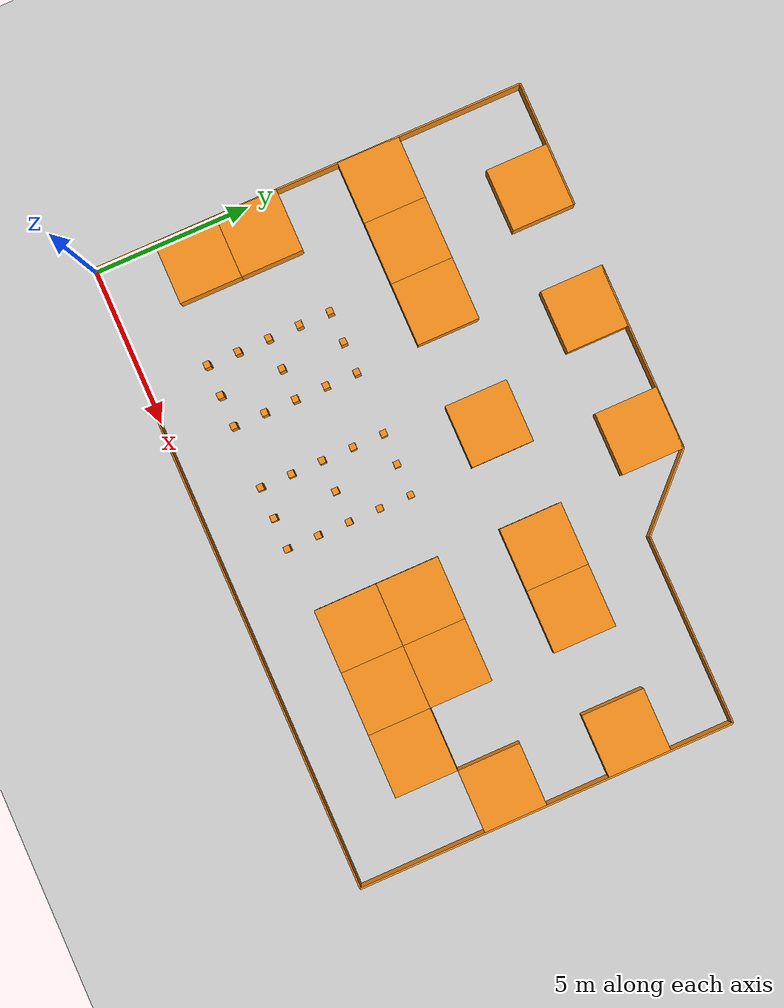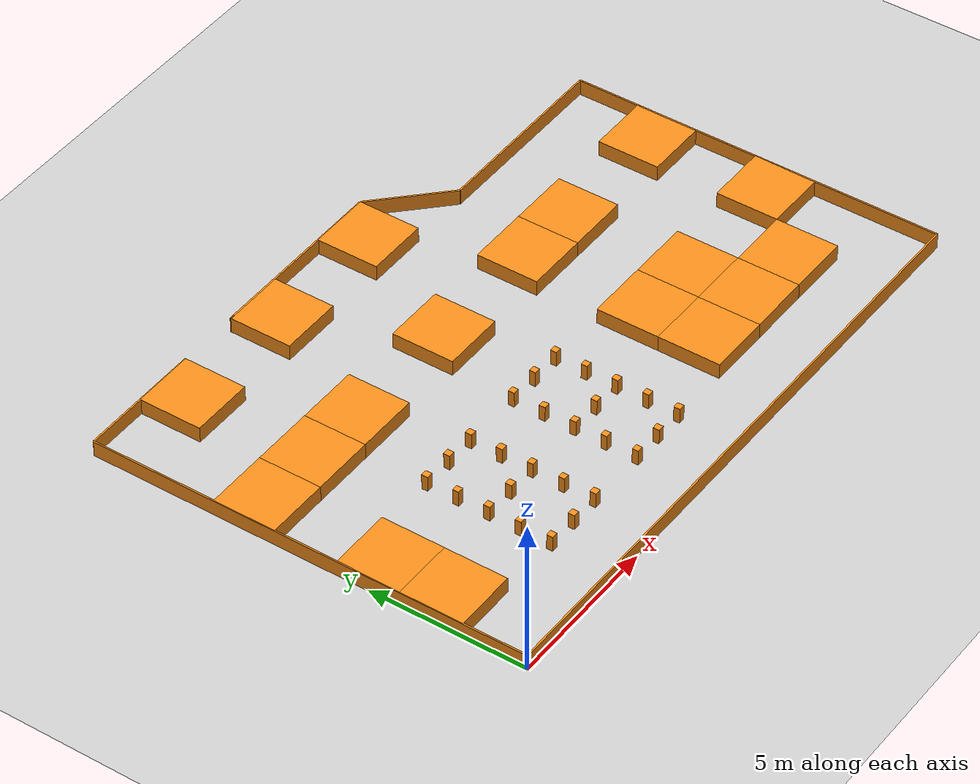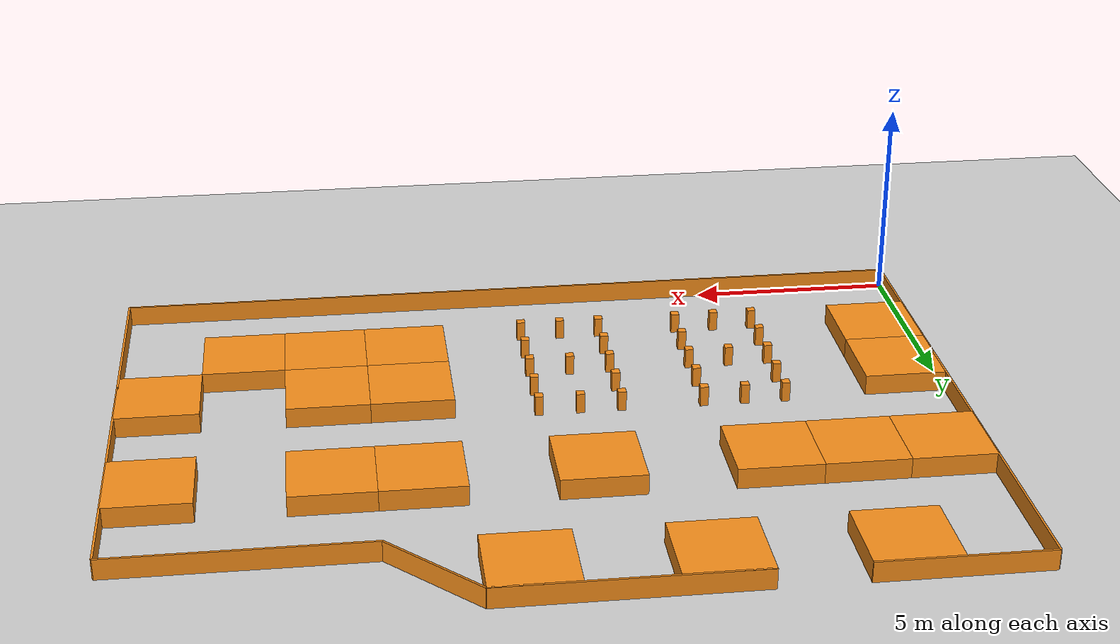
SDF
<sdf version="1.6">
 <world name="default">
  <model name="box_57">
   <pose>1.0 3.0 0.25 0 0 0</pose>
   <link name="link">
    <inertial>
     <mass>1</mass>
     <inertia><ixx>0</ixx><ixy>0</ixy><ixz>0</ixz><iyy>0</iyy><iyz>0</iyz><izz>0</izz></inertia>
    </inertial>
    <collision name="collision"><geometry><box><size>2.0 2.0 0.5</size></box></geometry></collision>
    <visual name="visual">
     <geometry><box><size>2.0 2.0 0.5</size></box></geometry>
     <material>
      <script><name>Gazebo/Orange</name><uri>file://media/materials/scripts/gazebo.material</uri></script>
     </material>
    </visual>
   </link>
   <static>1</static>
  </model>
  <model name="box_56">
   <pose>1.0 5.0 0.25 0 0 0</pose>
   <link name="link">
    <inertial>
     <mass>1</mass>
     <inertia><ixx>0</ixx><ixy>0</ixy><ixz>0</ixz><iyy>0</iyy><iyz>0</iyz><izz>0</izz></inertia>
    </inertial>
    <collision name="collision"><geometry><box><size>2.0 2.0 0.5</size></box></geometry></collision>
    <visual name="visual">
     <geometry><box><size>2.0 2.0 0.5</size></box></geometry>
     <material>
      <script><name>Gazebo/Orange</name><uri>file://media/materials/scripts/gazebo.material</uri></script>
     </material>
    </visual>
   </link>
   <static>1</static>
  </model>
  <model name="box_55">
   <pose>15.0 5.0 0.25 0 0 0</pose>
   <link name="link">
    <inertial>
     <mass>1</mass>
     <inertia><ixx>0</ixx><ixy>0</ixy><ixz>0</ixz><iyy>0</iyy><iyz>0</iyz><izz>0</izz></inertia>
    </inertial>
    <collision name="collision"><geometry><box><size>2.0 2.0 0.5</size></box></geometry></collision>
    <visual name="visual">
     <geometry><box><size>2.0 2.0 0.5</size></box></geometry>
     <material>
      <script><name>Gazebo/Orange</name><uri>file://media/materials/scripts/gazebo.material</uri></script>
     </material>
    </visual>
   </link>
   <static>1</static>
  </model>
  <model name="box_54">
   <pose>15.0 3.0 0.25 0 0 0</pose>
   <link name="link">
    <inertial>
     <mass>1</mass>
     <inertia><ixx>0</ixx><ixy>0</ixy><ixz>0</ixz><iyy>0</iyy><iyz>0</iyz><izz>0</izz></inertia>
    </inertial>
    <collision name="collision"><geometry><box><size>2.0 2.0 0.5</size></box></geometry></collision>
    <visual name="visual">
     <geometry><box><size>2.0 2.0 0.5</size></box></geometry>
     <material>
      <script><name>Gazebo/Orange</name><uri>file://media/materials/scripts/gazebo.material</uri></script>
     </material>
    </visual>
   </link>
   <static>1</static>
  </model>
  <model name="box_53">
   <pose>13.0 3.0 0.25 0 0 0</pose>
   <link name="link">
    <inertial>
     <mass>1</mass>
     <inertia><ixx>0</ixx><ixy>0</ixy><ixz>0</ixz><iyy>0</iyy><iyz>0</iyz><izz>0</izz></inertia>
    </inertial>
    <collision name="collision"><geometry><box><size>2.0 2.0 0.5</size></box></geometry></collision>
    <visual name="visual">
     <geometry><box><size>2.0 2.0 0.5</size></box></geometry>
     <material>
      <script><name>Gazebo/Orange</name><uri>file://media/materials/scripts/gazebo.material</uri></script>
     </material>
    </visual>
   </link>
   <static>1</static>
  </model>
  <model name="box_52">
   <pose>13.0 5.0 0.25 0 0 0</pose>
   <link name="link">
    <inertial>
     <mass>1</mass>
     <inertia><ixx>0</ixx><ixy>0</ixy><ixz>0</ixz><iyy>0</iyy><iyz>0</iyz><izz>0</izz></inertia>
    </inertial>
    <collision name="collision"><geometry><box><size>2.0 2.0 0.5</size></box></geometry></collision>
    <visual name="visual">
     <geometry><box><size>2.0 2.0 0.5</size></box></geometry>
     <material>
      <script><name>Gazebo/Orange</name><uri>file://media/materials/scripts/gazebo.material</uri></script>
     </material>
    </visual>
   </link>
   <static>1</static>
  </model>
  <model name="box_51">
   <pose>17.0 3.0 0.25 0 0 0</pose>
   <link name="link">
    <inertial>
     <mass>1</mass>
     <inertia><ixx>0</ixx><ixy>0</ixy><ixz>0</ixz><iyy>0</iyy><iyz>0</iyz><izz>0</izz></inertia>
    </inertial>
    <collision name="collision"><geometry><box><size>2.0 2.0 0.5</size></box></geometry></collision>
    <visual name="visual">
     <geometry><box><size>2.0 2.0 0.5</size></box></geometry>
     <material>
      <script><name>Gazebo/Orange</name><uri>file://media/materials/scripts/gazebo.material</uri></script>
     </material>
    </visual>
   </link>
   <static>1</static>
  </model>
  <model name="box_50">
   <pose>19.0 5.0 0.25 0 0 0</pose>
   <link name="link">
    <inertial>
     <mass>1</mass>
     <inertia><ixx>0</ixx><ixy>0</ixy><ixz>0</ixz><iyy>0</iyy><iyz>0</iyz><izz>0</izz></inertia>
    </inertial>
    <collision name="collision"><geometry><box><size>2.0 2.0 0.5</size></box></geometry></collision>
    <visual name="visual">
     <geometry><box><size>2.0 2.0 0.5</size></box></geometry>
     <material>
      <script><name>Gazebo/Orange</name><uri>file://media/materials/scripts/gazebo.material</uri></script>
     </material>
    </visual>
   </link>
   <static>1</static>
  </model>
  <model name="box_49">
   <pose>19.0 9.0 0.25 0 0 0</pose>
   <link name="link">
    <inertial>
     <mass>1</mass>
     <inertia><ixx>0</ixx><ixy>0</ixy><ixz>0</ixz><iyy>0</iyy><iyz>0</iyz><izz>0</izz></inertia>
    </inertial>
    <collision name="collision"><geometry><box><size>2.0 2.0 0.5</size></box></geometry></collision>
    <visual name="visual">
     <geometry><box><size>2.0 2.0 0.5</size></box></geometry>
     <material>
      <script><name>Gazebo/Orange</name><uri>file://media/materials/scripts/gazebo.material</uri></script>
     </material>
    </visual>
   </link>
   <static>1</static>
  </model>
  <model name="box_48">
   <pose>15.0 9.0 0.25 0 0 0</pose>
   <link name="link">
    <inertial>
     <mass>1</mass>
     <inertia><ixx>0</ixx><ixy>0</ixy><ixz>0</ixz><iyy>0</iyy><iyz>0</iyz><izz>0</izz></inertia>
    </inertial>
    <collision name="collision"><geometry><box><size>2.0 2.0 0.5</size></box></geometry></collision>
    <visual name="visual">
     <geometry><box><size>2.0 2.0 0.5</size></box></geometry>
     <material>
      <script><name>Gazebo/Orange</name><uri>file://media/materials/scripts/gazebo.material</uri></script>
     </material>
    </visual>
   </link>
   <static>1</static>
  </model>
  <model name="box_47">
   <pose>13.0 9.0 0.25 0 0 0</pose>
   <link name="link">
    <inertial>
     <mass>1</mass>
     <inertia><ixx>0</ixx><ixy>0</ixy><ixz>0</ixz><iyy>0</iyy><iyz>0</iyz><izz>0</izz></inertia>
    </inertial>
    <collision name="collision"><geometry><box><size>2.0 2.0 0.5</size></box></geometry></collision>
    <visual name="visual">
     <geometry><box><size>2.0 2.0 0.5</size></box></geometry>
     <material>
      <script><name>Gazebo/Orange</name><uri>file://media/materials/scripts/gazebo.material</uri></script>
     </material>
    </visual>
   </link>
   <static>1</static>
  </model>
  <model name="box_46">
   <pose>9.0 9.0 0.25 0 0 0</pose>
   <link name="link">
    <inertial>
     <mass>1</mass>
     <inertia><ixx>0</ixx><ixy>0</ixy><ixz>0</ixz><iyy>0</iyy><iyz>0</iyz><izz>0</izz></inertia>
    </inertial>
    <collision name="collision"><geometry><box><size>2.0 2.0 0.5</size></box></geometry></collision>
    <visual name="visual">
     <geometry><box><size>2.0 2.0 0.5</size></box></geometry>
     <material>
      <script><name>Gazebo/Orange</name><uri>file://media/materials/scripts/gazebo.material</uri></script>
     </material>
    </visual>
   </link>
   <static>1</static>
  </model>
  <model name="box_45">
   <pose>5.0 9.0 0.25 0 0 0</pose>
   <link name="link">
    <inertial>
     <mass>1</mass>
     <inertia><ixx>0</ixx><ixy>0</ixy><ixz>0</ixz><iyy>0</iyy><iyz>0</iyz><izz>0</izz></inertia>
    </inertial>
    <collision name="collision"><geometry><box><size>2.0 2.0 0.5</size></box></geometry></collision>
    <visual name="visual">
     <geometry><box><size>2.0 2.0 0.5</size></box></geometry>
     <material>
      <script><name>Gazebo/Orange</name><uri>file://media/materials/scripts/gazebo.material</uri></script>
     </material>
    </visual>
   </link>
   <static>1</static>
  </model>
  <model name="box_44">
   <pose>3.0 9.0 0.25 0 0 0</pose>
   <link name="link">
    <inertial>
     <mass>1</mass>
     <inertia><ixx>0</ixx><ixy>0</ixy><ixz>0</ixz><iyy>0</iyy><iyz>0</iyz><izz>0</izz></inertia>
    </inertial>
    <collision name="collision"><geometry><box><size>2.0 2.0 0.5</size></box></geometry></collision>
    <visual name="visual">
     <geometry><box><size>2.0 2.0 0.5</size></box></geometry>
     <material>
      <script><name>Gazebo/Orange</name><uri>file://media/materials/scripts/gazebo.material</uri></script>
     </material>
    </visual>
   </link>
   <static>1</static>
  </model>
  <model name="box_43">
   <pose>1.0 9.0 0.25 0 0 0</pose>
   <link name="link">
    <inertial>
     <mass>1</mass>
     <inertia><ixx>0</ixx><ixy>0</ixy><ixz>0</ixz><iyy>0</iyy><iyz>0</iyz><izz>0</izz></inertia>
    </inertial>
    <collision name="collision"><geometry><box><size>2.0 2.0 0.5</size></box></geometry></collision>
    <visual name="visual">
     <geometry><box><size>2.0 2.0 0.5</size></box></geometry>
     <material>
      <script><name>Gazebo/Orange</name><uri>file://media/materials/scripts/gazebo.material</uri></script>
     </material>
    </visual>
   </link>
   <static>1</static>
  </model>
  <model name="box_42">
   <pose>11.0 13.0 0.25 0 0 0</pose>
   <link name="link">
    <inertial>
     <mass>1</mass>
     <inertia><ixx>0</ixx><ixy>0</ixy><ixz>0</ixz><iyy>0</iyy><iyz>0</iyz><izz>0</izz></inertia>
    </inertial>
    <collision name="collision"><geometry><box><size>2.0 2.0 0.5</size></box></geometry></collision>
    <visual name="visual">
     <geometry><box><size>2.0 2.0 0.5</size></box></geometry>
     <material>
      <script><name>Gazebo/Orange</name><uri>file://media/materials/scripts/gazebo.material</uri></script>
     </material>
    </visual>
   </link>
   <static>1</static>
  </model>
  <model name="box_41">
   <pose>7.0 13.0 0.25 0 0 0</pose>
   <link name="link">
    <inertial>
     <mass>1</mass>
     <inertia><ixx>0</ixx><ixy>0</ixy><ixz>0</ixz><iyy>0</iyy><iyz>0</iyz><izz>0</izz></inertia>
    </inertial>
    <collision name="collision"><geometry><box><size>2.0 2.0 0.5</size></box></geometry></collision>
    <visual name="visual">
     <geometry><box><size>2.0 2.0 0.5</size></box></geometry>
     <material>
      <script><name>Gazebo/Orange</name><uri>file://media/materials/scripts/gazebo.material</uri></script>
     </material>
    </visual>
   </link>
   <static>1</static>
  </model>
  <model name="box_40">
   <pose>3.0 13.0 0.25 0 0 0</pose>
   <link name="link">
    <inertial>
     <mass>1</mass>
     <inertia><ixx>0</ixx><ixy>0</ixy><ixz>0</ixz><iyy>0</iyy><iyz>0</iyz><izz>0</izz></inertia>
    </inertial>
    <collision name="collision"><geometry><box><size>2.0 2.0 0.5</size></box></geometry></collision>
    <visual name="visual">
     <geometry><box><size>2.0 2.0 0.5</size></box></geometry>
     <material>
      <script><name>Gazebo/Orange</name><uri>file://media/materials/scripts/gazebo.material</uri></script>
     </material>
    </visual>
   </link>
   <static>1</static>
  </model>
  <model name="box_39">
   <pose>10.0 2.0 0.25 0 0 0</pose>
   <link name="link">
    <inertial>
     <mass>1</mass>
     <inertia><ixx>0</ixx><ixy>0</ixy><ixz>0</ixz><iyy>0</iyy><iyz>0</iyz><izz>0</izz></inertia>
    </inertial>
    <collision name="collision"><geometry><box><size>0.2 0.2 0.5</size></box></geometry></collision>
    <visual name="visual">
     <geometry><box><size>0.2 0.2 0.5</size></box></geometry>
     <material>
      <script><name>Gazebo/Orange</name><uri>file://media/materials/scripts/gazebo.material</uri></script>
     </material>
    </visual>
   </link>
   <static>1</static>
  </model>
  <model name="box_38">
   <pose>9.0 2.0 0.25 0 0 0</pose>
   <link name="link">
    <inertial>
     <mass>1</mass>
     <inertia><ixx>0</ixx><ixy>0</ixy><ixz>0</ixz><iyy>0</iyy><iyz>0</iyz><izz>0</izz></inertia>
    </inertial>
    <collision name="collision"><geometry><box><size>0.2 0.2 0.5</size></box></geometry></collision>
    <visual name="visual">
     <geometry><box><size>0.2 0.2 0.5</size></box></geometry>
     <material>
      <script><name>Gazebo/Orange</name><uri>file://media/materials/scripts/gazebo.material</uri></script>
     </material>
    </visual>
   </link>
   <static>1</static>
  </model>
  <model name="box_37">
   <pose>8.0 2.0 0.25 0 0 0</pose>
   <link name="link">
    <inertial>
     <mass>1</mass>
     <inertia><ixx>0</ixx><ixy>0</ixy><ixz>0</ixz><iyy>0</iyy><iyz>0</iyz><izz>0</izz></inertia>
    </inertial>
    <collision name="collision"><geometry><box><size>0.2 0.2 0.5</size></box></geometry></collision>
    <visual name="visual">
     <geometry><box><size>0.2 0.2 0.5</size></box></geometry>
     <material>
      <script><name>Gazebo/Orange</name><uri>file://media/materials/scripts/gazebo.material</uri></script>
     </material>
    </visual>
   </link>
   <static>1</static>
  </model>
  <model name="box_36">
   <pose>10.0 3.0 0.25 0 0 0</pose>
   <link name="link">
    <inertial>
     <mass>1</mass>
     <inertia><ixx>0</ixx><ixy>0</ixy><ixz>0</ixz><iyy>0</iyy><iyz>0</iyz><izz>0</izz></inertia>
    </inertial>
    <collision name="collision"><geometry><box><size>0.2 0.2 0.5</size></box></geometry></collision>
    <visual name="visual">
     <geometry><box><size>0.2 0.2 0.5</size></box></geometry>
     <material>
      <script><name>Gazebo/Orange</name><uri>file://media/materials/scripts/gazebo.material</uri></script>
     </material>
    </visual>
   </link>
   <static>1</static>
  </model>
  <model name="box_35">
   <pose>8.0 3.0 0.25 0 0 0</pose>
   <link name="link">
    <inertial>
     <mass>1</mass>
     <inertia><ixx>0</ixx><ixy>0</ixy><ixz>0</ixz><iyy>0</iyy><iyz>0</iyz><izz>0</izz></inertia>
    </inertial>
    <collision name="collision"><geometry><box><size>0.2 0.2 0.5</size></box></geometry></collision>
    <visual name="visual">
     <geometry><box><size>0.2 0.2 0.5</size></box></geometry>
     <material>
      <script><name>Gazebo/Orange</name><uri>file://media/materials/scripts/gazebo.material</uri></script>
     </material>
    </visual>
   </link>
   <static>1</static>
  </model>
  <model name="box_34">
   <pose>10.0 4.0 0.25 0 0 0</pose>
   <link name="link">
    <inertial>
     <mass>1</mass>
     <inertia><ixx>0</ixx><ixy>0</ixy><ixz>0</ixz><iyy>0</iyy><iyz>0</iyz><izz>0</izz></inertia>
    </inertial>
    <collision name="collision"><geometry><box><size>0.2 0.2 0.5</size></box></geometry></collision>
    <visual name="visual">
     <geometry><box><size>0.2 0.2 0.5</size></box></geometry>
     <material>
      <script><name>Gazebo/Orange</name><uri>file://media/materials/scripts/gazebo.material</uri></script>
     </material>
    </visual>
   </link>
   <static>1</static>
  </model>
  <model name="box_33">
   <pose>9.0 4.0 0.25 0 0 0</pose>
   <link name="link">
    <inertial>
     <mass>1</mass>
     <inertia><ixx>0</ixx><ixy>0</ixy><ixz>0</ixz><iyy>0</iyy><iyz>0</iyz><izz>0</izz></inertia>
    </inertial>
    <collision name="collision"><geometry><box><size>0.2 0.2 0.5</size></box></geometry></collision>
    <visual name="visual">
     <geometry><box><size>0.2 0.2 0.5</size></box></geometry>
     <material>
      <script><name>Gazebo/Orange</name><uri>file://media/materials/scripts/gazebo.material</uri></script>
     </material>
    </visual>
   </link>
   <static>1</static>
  </model>
  <model name="box_32">
   <pose>8.0 4.0 0.25 0 0 0</pose>
   <link name="link">
    <inertial>
     <mass>1</mass>
     <inertia><ixx>0</ixx><ixy>0</ixy><ixz>0</ixz><iyy>0</iyy><iyz>0</iyz><izz>0</izz></inertia>
    </inertial>
    <collision name="collision"><geometry><box><size>0.2 0.2 0.5</size></box></geometry></collision>
    <visual name="visual">
     <geometry><box><size>0.2 0.2 0.5</size></box></geometry>
     <material>
      <script><name>Gazebo/Orange</name><uri>file://media/materials/scripts/gazebo.material</uri></script>
     </material>
    </visual>
   </link>
   <static>1</static>
  </model>
  <model name="box_31">
   <pose>10.0 4.0 0.25 0 0 0</pose>
   <link name="link">
    <inertial>
     <mass>1</mass>
     <inertia><ixx>0</ixx><ixy>0</ixy><ixz>0</ixz><iyy>0</iyy><iyz>0</iyz><izz>0</izz></inertia>
    </inertial>
    <collision name="collision"><geometry><box><size>0.2 0.2 0.5</size></box></geometry></collision>
    <visual name="visual">
     <geometry><box><size>0.2 0.2 0.5</size></box></geometry>
     <material>
      <script><name>Gazebo/Orange</name><uri>file://media/materials/scripts/gazebo.material</uri></script>
     </material>
    </visual>
   </link>
   <static>1</static>
  </model>
  <model name="box_30">
   <pose>9.0 4.0 0.25 0 0 0</pose>
   <link name="link">
    <inertial>
     <mass>1</mass>
     <inertia><ixx>0</ixx><ixy>0</ixy><ixz>0</ixz><iyy>0</iyy><iyz>0</iyz><izz>0</izz></inertia>
    </inertial>
    <collision name="collision"><geometry><box><size>0.2 0.2 0.5</size></box></geometry></collision>
    <visual name="visual">
     <geometry><box><size>0.2 0.2 0.5</size></box></geometry>
     <material>
      <script><name>Gazebo/Orange</name><uri>file://media/materials/scripts/gazebo.material</uri></script>
     </material>
    </visual>
   </link>
   <static>1</static>
  </model>
  <model name="box_29">
   <pose>8.0 4.0 0.25 0 0 0</pose>
   <link name="link">
    <inertial>
     <mass>1</mass>
     <inertia><ixx>0</ixx><ixy>0</ixy><ixz>0</ixz><iyy>0</iyy><iyz>0</iyz><izz>0</izz></inertia>
    </inertial>
    <collision name="collision"><geometry><box><size>0.2 0.2 0.5</size></box></geometry></collision>
    <visual name="visual">
     <geometry><box><size>0.2 0.2 0.5</size></box></geometry>
     <material>
      <script><name>Gazebo/Orange</name><uri>file://media/materials/scripts/gazebo.material</uri></script>
     </material>
    </visual>
   </link>
   <static>1</static>
  </model>
  <model name="box_28">
   <pose>10.0 5.0 0.25 0 0 0</pose>
   <link name="link">
    <inertial>
     <mass>1</mass>
     <inertia><ixx>0</ixx><ixy>0</ixy><ixz>0</ixz><iyy>0</iyy><iyz>0</iyz><izz>0</izz></inertia>
    </inertial>
    <collision name="collision"><geometry><box><size>0.2 0.2 0.5</size></box></geometry></collision>
    <visual name="visual">
     <geometry><box><size>0.2 0.2 0.5</size></box></geometry>
     <material>
      <script><name>Gazebo/Orange</name><uri>file://media/materials/scripts/gazebo.material</uri></script>
     </material>
    </visual>
   </link>
   <static>1</static>
  </model>
  <model name="box_27">
   <pose>8.0 5.0 0.25 0 0 0</pose>
   <link name="link">
    <inertial>
     <mass>1</mass>
     <inertia><ixx>0</ixx><ixy>0</ixy><ixz>0</ixz><iyy>0</iyy><iyz>0</iyz><izz>0</izz></inertia>
    </inertial>
    <collision name="collision"><geometry><box><size>0.2 0.2 0.5</size></box></geometry></collision>
    <visual name="visual">
     <geometry><box><size>0.2 0.2 0.5</size></box></geometry>
     <material>
      <script><name>Gazebo/Orange</name><uri>file://media/materials/scripts/gazebo.material</uri></script>
     </material>
    </visual>
   </link>
   <static>1</static>
  </model>
  <model name="box_26">
   <pose>10.0 6.0 0.25 0 0 0</pose>
   <link name="link">
    <inertial>
     <mass>1</mass>
     <inertia><ixx>0</ixx><ixy>0</ixy><ixz>0</ixz><iyy>0</iyy><iyz>0</iyz><izz>0</izz></inertia>
    </inertial>
    <collision name="collision"><geometry><box><size>0.2 0.2 0.5</size></box></geometry></collision>
    <visual name="visual">
     <geometry><box><size>0.2 0.2 0.5</size></box></geometry>
     <material>
      <script><name>Gazebo/Orange</name><uri>file://media/materials/scripts/gazebo.material</uri></script>
     </material>
    </visual>
   </link>
   <static>1</static>
  </model>
  <model name="box_25">
   <pose>9.0 6.0 0.25 0 0 0</pose>
   <link name="link">
    <inertial>
     <mass>1</mass>
     <inertia><ixx>0</ixx><ixy>0</ixy><ixz>0</ixz><iyy>0</iyy><iyz>0</iyz><izz>0</izz></inertia>
    </inertial>
    <collision name="collision"><geometry><box><size>0.2 0.2 0.5</size></box></geometry></collision>
    <visual name="visual">
     <geometry><box><size>0.2 0.2 0.5</size></box></geometry>
     <material>
      <script><name>Gazebo/Orange</name><uri>file://media/materials/scripts/gazebo.material</uri></script>
     </material>
    </visual>
   </link>
   <static>1</static>
  </model>
  <model name="box_24">
   <pose>8.0 6.0 0.25 0 0 0</pose>
   <link name="link">
    <inertial>
     <mass>1</mass>
     <inertia><ixx>0</ixx><ixy>0</ixy><ixz>0</ixz><iyy>0</iyy><iyz>0</iyz><izz>0</izz></inertia>
    </inertial>
    <collision name="collision"><geometry><box><size>0.2 0.2 0.5</size></box></geometry></collision>
    <visual name="visual">
     <geometry><box><size>0.2 0.2 0.5</size></box></geometry>
     <material>
      <script><name>Gazebo/Orange</name><uri>file://media/materials/scripts/gazebo.material</uri></script>
     </material>
    </visual>
   </link>
   <static>1</static>
  </model>
  <model name="box_23">
   <pose>6.0 2.0 0.25 0 0 0</pose>
   <link name="link">
    <inertial>
     <mass>1</mass>
     <inertia><ixx>0</ixx><ixy>0</ixy><ixz>0</ixz><iyy>0</iyy><iyz>0</iyz><izz>0</izz></inertia>
    </inertial>
    <collision name="collision"><geometry><box><size>0.2 0.2 0.5</size></box></geometry></collision>
    <visual name="visual">
     <geometry><box><size>0.2 0.2 0.5</size></box></geometry>
     <material>
      <script><name>Gazebo/Orange</name><uri>file://media/materials/scripts/gazebo.material</uri></script>
     </material>
    </visual>
   </link>
   <static>1</static>
  </model>
  <model name="box_22">
   <pose>5.0 2.0 0.25 0 0 0</pose>
   <link name="link">
    <inertial>
     <mass>1</mass>
     <inertia><ixx>0</ixx><ixy>0</ixy><ixz>0</ixz><iyy>0</iyy><iyz>0</iyz><izz>0</izz></inertia>
    </inertial>
    <collision name="collision"><geometry><box><size>0.2 0.2 0.5</size></box></geometry></collision>
    <visual name="visual">
     <geometry><box><size>0.2 0.2 0.5</size></box></geometry>
     <material>
      <script><name>Gazebo/Orange</name><uri>file://media/materials/scripts/gazebo.material</uri></script>
     </material>
    </visual>
   </link>
   <static>1</static>
  </model>
  <model name="box_21">
   <pose>4.0 2.0 0.25 0 0 0</pose>
   <link name="link">
    <inertial>
     <mass>1</mass>
     <inertia><ixx>0</ixx><ixy>0</ixy><ixz>0</ixz><iyy>0</iyy><iyz>0</iyz><izz>0</izz></inertia>
    </inertial>
    <collision name="collision"><geometry><box><size>0.2 0.2 0.5</size></box></geometry></collision>
    <visual name="visual">
     <geometry><box><size>0.2 0.2 0.5</size></box></geometry>
     <material>
      <script><name>Gazebo/Orange</name><uri>file://media/materials/scripts/gazebo.material</uri></script>
     </material>
    </visual>
   </link>
   <static>1</static>
  </model>
  <model name="box_20">
   <pose>6.0 3.0 0.25 0 0 0</pose>
   <link name="link">
    <inertial>
     <mass>1</mass>
     <inertia><ixx>0</ixx><ixy>0</ixy><ixz>0</ixz><iyy>0</iyy><iyz>0</iyz><izz>0</izz></inertia>
    </inertial>
    <collision name="collision"><geometry><box><size>0.2 0.2 0.5</size></box></geometry></collision>
    <visual name="visual">
     <geometry><box><size>0.2 0.2 0.5</size></box></geometry>
     <material>
      <script><name>Gazebo/Orange</name><uri>file://media/materials/scripts/gazebo.material</uri></script>
     </material>
    </visual>
   </link>
   <static>1</static>
  </model>
  <model name="box_19">
   <pose>4.0 3.0 0.25 0 0 0</pose>
   <link name="link">
    <inertial>
     <mass>1</mass>
     <inertia><ixx>0</ixx><ixy>0</ixy><ixz>0</ixz><iyy>0</iyy><iyz>0</iyz><izz>0</izz></inertia>
    </inertial>
    <collision name="collision"><geometry><box><size>0.2 0.2 0.5</size></box></geometry></collision>
    <visual name="visual">
     <geometry><box><size>0.2 0.2 0.5</size></box></geometry>
     <material>
      <script><name>Gazebo/Orange</name><uri>file://media/materials/scripts/gazebo.material</uri></script>
     </material>
    </visual>
   </link>
   <static>1</static>
  </model>
  <model name="box_18">
   <pose>6.0 4.0 0.25 0 0 0</pose>
   <link name="link">
    <inertial>
     <mass>1</mass>
     <inertia><ixx>0</ixx><ixy>0</ixy><ixz>0</ixz><iyy>0</iyy><iyz>0</iyz><izz>0</izz></inertia>
    </inertial>
    <collision name="collision"><geometry><box><size>0.2 0.2 0.5</size></box></geometry></collision>
    <visual name="visual">
     <geometry><box><size>0.2 0.2 0.5</size></box></geometry>
     <material>
      <script><name>Gazebo/Orange</name><uri>file://media/materials/scripts/gazebo.material</uri></script>
     </material>
    </visual>
   </link>
   <static>1</static>
  </model>
  <model name="box_17">
   <pose>5.0 4.0 0.25 0 0 0</pose>
   <link name="link">
    <inertial>
     <mass>1</mass>
     <inertia><ixx>0</ixx><ixy>0</ixy><ixz>0</ixz><iyy>0</iyy><iyz>0</iyz><izz>0</izz></inertia>
    </inertial>
    <collision name="collision"><geometry><box><size>0.2 0.2 0.5</size></box></geometry></collision>
    <visual name="visual">
     <geometry><box><size>0.2 0.2 0.5</size></box></geometry>
     <material>
      <script><name>Gazebo/Orange</name><uri>file://media/materials/scripts/gazebo.material</uri></script>
     </material>
    </visual>
   </link>
   <static>1</static>
  </model>
  <model name="box_16">
   <pose>4.0 4.0 0.25 0 0 0</pose>
   <link name="link">
    <inertial>
     <mass>1</mass>
     <inertia><ixx>0</ixx><ixy>0</ixy><ixz>0</ixz><iyy>0</iyy><iyz>0</iyz><izz>0</izz></inertia>
    </inertial>
    <collision name="collision"><geometry><box><size>0.2 0.2 0.5</size></box></geometry></collision>
    <visual name="visual">
     <geometry><box><size>0.2 0.2 0.5</size></box></geometry>
     <material>
      <script><name>Gazebo/Orange</name><uri>file://media/materials/scripts/gazebo.material</uri></script>
     </material>
    </visual>
   </link>
   <static>1</static>
  </model>
  <model name="box_15">
   <pose>6.0 4.0 0.25 0 0 0</pose>
   <link name="link">
    <inertial>
     <mass>1</mass>
     <inertia><ixx>0</ixx><ixy>0</ixy><ixz>0</ixz><iyy>0</iyy><iyz>0</iyz><izz>0</izz></inertia>
    </inertial>
    <collision name="collision"><geometry><box><size>0.2 0.2 0.5</size></box></geometry></collision>
    <visual name="visual">
     <geometry><box><size>0.2 0.2 0.5</size></box></geometry>
     <material>
      <script><name>Gazebo/Orange</name><uri>file://media/materials/scripts/gazebo.material</uri></script>
     </material>
    </visual>
   </link>
   <static>1</static>
  </model>
  <model name="box_14">
   <pose>5.0 4.0 0.25 0 0 0</pose>
   <link name="link">
    <inertial>
     <mass>1</mass>
     <inertia><ixx>0</ixx><ixy>0</ixy><ixz>0</ixz><iyy>0</iyy><iyz>0</iyz><izz>0</izz></inertia>
    </inertial>
    <collision name="collision"><geometry><box><size>0.2 0.2 0.5</size></box></geometry></collision>
    <visual name="visual">
     <geometry><box><size>0.2 0.2 0.5</size></box></geometry>
     <material>
      <script><name>Gazebo/Orange</name><uri>file://media/materials/scripts/gazebo.material</uri></script>
     </material>
    </visual>
   </link>
   <static>1</static>
  </model>
  <model name="box_13">
   <pose>4.0 4.0 0.25 0 0 0</pose>
   <link name="link">
    <inertial>
     <mass>1</mass>
     <inertia><ixx>0</ixx><ixy>0</ixy><ixz>0</ixz><iyy>0</iyy><iyz>0</iyz><izz>0</izz></inertia>
    </inertial>
    <collision name="collision"><geometry><box><size>0.2 0.2 0.5</size></box></geometry></collision>
    <visual name="visual">
     <geometry><box><size>0.2 0.2 0.5</size></box></geometry>
     <material>
      <script><name>Gazebo/Orange</name><uri>file://media/materials/scripts/gazebo.material</uri></script>
     </material>
    </visual>
   </link>
   <static>1</static>
  </model>
  <model name="box_12">
   <pose>6.0 5.0 0.25 0 0 0</pose>
   <link name="link">
    <inertial>
     <mass>1</mass>
     <inertia><ixx>0</ixx><ixy>0</ixy><ixz>0</ixz><iyy>0</iyy><iyz>0</iyz><izz>0</izz></inertia>
    </inertial>
    <collision name="collision"><geometry><box><size>0.2 0.2 0.5</size></box></geometry></collision>
    <visual name="visual">
     <geometry><box><size>0.2 0.2 0.5</size></box></geometry>
     <material>
      <script><name>Gazebo/Orange</name><uri>file://media/materials/scripts/gazebo.material</uri></script>
     </material>
    </visual>
   </link>
   <static>1</static>
  </model>
  <model name="box_11">
   <pose>4.0 5.0 0.25 0 0 0</pose>
   <link name="link">
    <inertial>
     <mass>1</mass>
     <inertia><ixx>0</ixx><ixy>0</ixy><ixz>0</ixz><iyy>0</iyy><iyz>0</iyz><izz>0</izz></inertia>
    </inertial>
    <collision name="collision"><geometry><box><size>0.2 0.2 0.5</size></box></geometry></collision>
    <visual name="visual">
     <geometry><box><size>0.2 0.2 0.5</size></box></geometry>
     <material>
      <script><name>Gazebo/Orange</name><uri>file://media/materials/scripts/gazebo.material</uri></script>
     </material>
    </visual>
   </link>
   <static>1</static>
  </model>
  <model name="box_10">
   <pose>6.0 6.0 0.25 0 0 0</pose>
   <link name="link">
    <inertial>
     <mass>1</mass>
     <inertia><ixx>0</ixx><ixy>0</ixy><ixz>0</ixz><iyy>0</iyy><iyz>0</iyz><izz>0</izz></inertia>
    </inertial>
    <collision name="collision"><geometry><box><size>0.2 0.2 0.5</size></box></geometry></collision>
    <visual name="visual">
     <geometry><box><size>0.2 0.2 0.5</size></box></geometry>
     <material>
      <script><name>Gazebo/Orange</name><uri>file://media/materials/scripts/gazebo.material</uri></script>
     </material>
    </visual>
   </link>
   <static>1</static>
  </model>
  <model name="box_9">
   <pose>5.0 6.0 0.25 0 0 0</pose>
   <link name="link">
    <inertial>
     <mass>1</mass>
     <inertia><ixx>0</ixx><ixy>0</ixy><ixz>0</ixz><iyy>0</iyy><iyz>0</iyz><izz>0</izz></inertia>
    </inertial>
    <collision name="collision"><geometry><box><size>0.2 0.2 0.5</size></box></geometry></collision>
    <visual name="visual">
     <geometry><box><size>0.2 0.2 0.5</size></box></geometry>
     <material>
      <script><name>Gazebo/Orange</name><uri>file://media/materials/scripts/gazebo.material</uri></script>
     </material>
    </visual>
   </link>
   <static>1</static>
  </model>
  <model name="box_8">
   <pose>4.0 6.0 0.25 0 0 0</pose>
   <link name="link">
    <inertial>
     <mass>1</mass>
     <inertia><ixx>0</ixx><ixy>0</ixy><ixz>0</ixz><iyy>0</iyy><iyz>0</iyz><izz>0</izz></inertia>
    </inertial>
    <collision name="collision"><geometry><box><size>0.2 0.2 0.5</size></box></geometry></collision>
    <visual name="visual">
     <geometry><box><size>0.2 0.2 0.5</size></box></geometry>
     <material>
      <script><name>Gazebo/Orange</name><uri>file://media/materials/scripts/gazebo.material</uri></script>
     </material>
    </visual>
   </link>
   <static>1</static>
  </model>
  <model name="box_7">
   <pose>9.0 14.0 0.25 0 0 -0.0</pose>
   <link name="link">
    <inertial>
     <mass>1</mass>
     <inertia><ixx>0</ixx><ixy>0</ixy><ixz>0</ixz><iyy>0</iyy><iyz>0</iyz><izz>0</izz></inertia>
    </inertial>
    <collision name="collision"><geometry><box><size>6.0 0.05 0.5</size></box></geometry></collision>
    <visual name="visual">
     <geometry><box><size>6.0 0.05 0.5</size></box></geometry>
     <material>
      <script><name>Gazebo/Orange</name><uri>file://media/materials/scripts/gazebo.material</uri></script>
     </material>
    </visual>
   </link>
   <static>1</static>
  </model>
  <model name="box_6">
   <pose>13.0 13.0 0.25 0 0 -0.7853981633974483</pose>
   <link name="link">
    <inertial>
     <mass>1</mass>
     <inertia><ixx>0</ixx><ixy>0</ixy><ixz>0</ixz><iyy>0</iyy><iyz>0</iyz><izz>0</izz></inertia>
    </inertial>
    <collision name="collision">
     <geometry><box><size>2.8284271247461903 0.05 0.5</size></box></geometry>
    </collision>
    <visual name="visual">
     <geometry><box><size>2.8284271247461903 0.05 0.5</size></box></geometry>
     <material>
      <script><name>Gazebo/Orange</name><uri>file://media/materials/scripts/gazebo.material</uri></script>
     </material>
    </visual>
   </link>
   <static>1</static>
  </model>
  <model name="box_5">
   <pose>17.0 12.0 0.25 0 0 -0.0</pose>
   <link name="link">
    <inertial>
     <mass>1</mass>
     <inertia><ixx>0</ixx><ixy>0</ixy><ixz>0</ixz><iyy>0</iyy><iyz>0</iyz><izz>0</izz></inertia>
    </inertial>
    <collision name="collision"><geometry><box><size>6.0 0.05 0.5</size></box></geometry></collision>
    <visual name="visual">
     <geometry><box><size>6.0 0.05 0.5</size></box></geometry>
     <material>
      <script><name>Gazebo/Orange</name><uri>file://media/materials/scripts/gazebo.material</uri></script>
     </material>
    </visual>
   </link>
   <static>1</static>
  </model>
  <model name="box_4">
   <pose>20.0 6.0 0.25 0 0 -1.5707963267948966</pose>
   <link name="link">
    <inertial>
     <mass>1</mass>
     <inertia><ixx>0</ixx><ixy>0</ixy><ixz>0</ixz><iyy>0</iyy><iyz>0</iyz><izz>0</izz></inertia>
    </inertial>
    <collision name="collision"><geometry><box><size>12.0 0.05 0.5</size></box></geometry></collision>
    <visual name="visual">
     <geometry><box><size>12.0 0.05 0.5</size></box></geometry>
     <material>
      <script><name>Gazebo/Orange</name><uri>file://media/materials/scripts/gazebo.material</uri></script>
     </material>
    </visual>
   </link>
   <static>1</static>
  </model>
  <model name="box_3">
   <pose>10.0 0.0 0.25 0 0 -3.141592653589793</pose>
   <link name="link">
    <inertial>
     <mass>1</mass>
     <inertia><ixx>0</ixx><ixy>0</ixy><ixz>0</ixz><iyy>0</iyy><iyz>0</iyz><izz>0</izz></inertia>
    </inertial>
    <collision name="collision"><geometry><box><size>20.0 0.05 0.5</size></box></geometry></collision>
    <visual name="visual">
     <geometry><box><size>20.0 0.05 0.5</size></box></geometry>
     <material>
      <script><name>Gazebo/Orange</name><uri>file://media/materials/scripts/gazebo.material</uri></script>
     </material>
    </visual>
   </link>
   <static>1</static>
  </model>
  <model name="box_2">
   <pose>0.0 7.0 0.25 0 0 1.5707963267948966</pose>
   <link name="link">
    <inertial>
     <mass>1</mass>
     <inertia><ixx>0</ixx><ixy>0</ixy><ixz>0</ixz><iyy>0</iyy><iyz>0</iyz><izz>0</izz></inertia>
    </inertial>
    <collision name="collision"><geometry><box><size>14.0 0.05 0.5</size></box></geometry></collision>
    <visual name="visual">
     <geometry><box><size>14.0 0.05 0.5</size></box></geometry>
     <material>
      <script><name>Gazebo/Orange</name><uri>file://media/materials/scripts/gazebo.material</uri></script>
     </material>
    </visual>
   </link>
   <static>1</static>
  </model>
  <model name="box_1">
   <pose>2.0 14.0 0.25 0 0 -0.0</pose>
   <link name="link">
    <inertial>
     <mass>1</mass>
     <inertia><ixx>0</ixx><ixy>0</ixy><ixz>0</ixz><iyy>0</iyy><iyz>0</iyz><izz>0</izz></inertia>
    </inertial>
    <collision name="collision"><geometry><box><size>4.0 0.05 0.5</size></box></geometry></collision>
    <visual name="visual">
     <geometry><box><size>4.0 0.05 0.5</size></box></geometry>
     <material>
      <script><name>Gazebo/Orange</name><uri>file://media/materials/scripts/gazebo.material</uri></script>
     </material>
    </visual>
   </link>
   <static>1</static>
  </model>
  <model name="ground_plane">
   <static>1</static>
   <link name="link">
    <collision name="collision">
     <geometry><plane><normal>0 0 1</normal><size>100 100</size></plane></geometry>
     <surface>
      <contact><collide_bitmask>65535</collide_bitmask></contact>
      <friction><ode><mu>100</mu><mu2>50</mu2></ode></friction>
     </surface>
    </collision>
    <visual name="visual">
     <cast_shadows>0</cast_shadows>
     <geometry><plane><normal>0 0 1</normal><size>100 100</size></plane></geometry>
     <material>
      <script><uri>file://media/materials/scripts/gazebo.material</uri><name>Gazebo/Grey</name></script>
     </material>
    </visual>
   </link>
  </model>
 </world>
</sdf>
